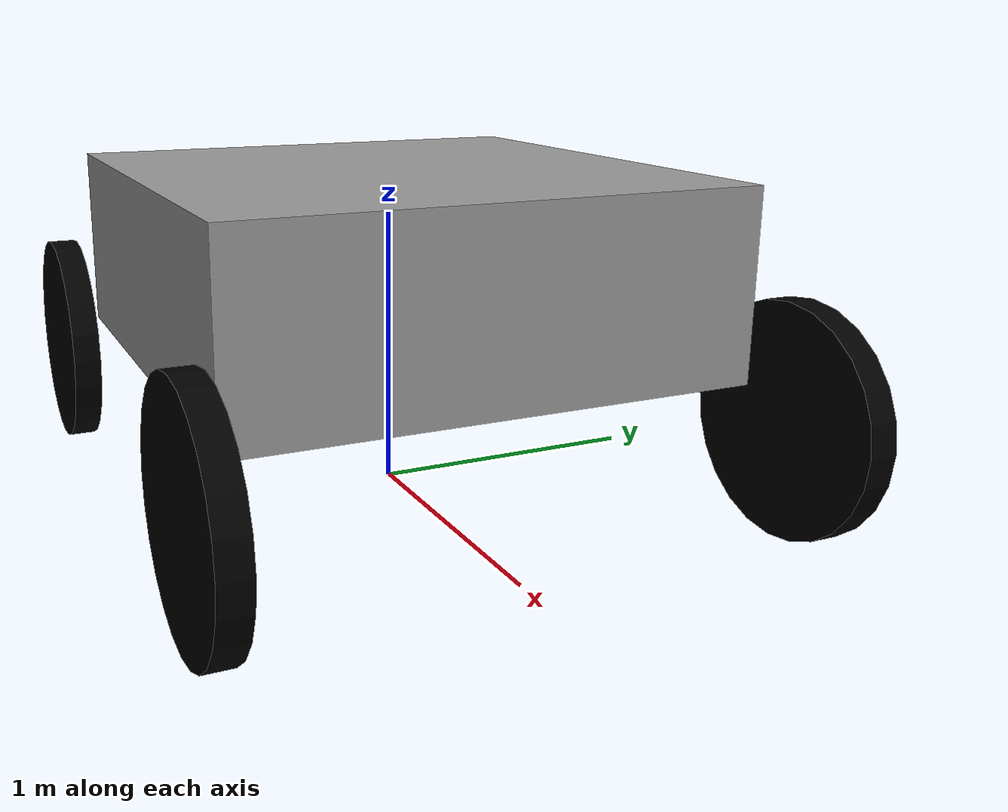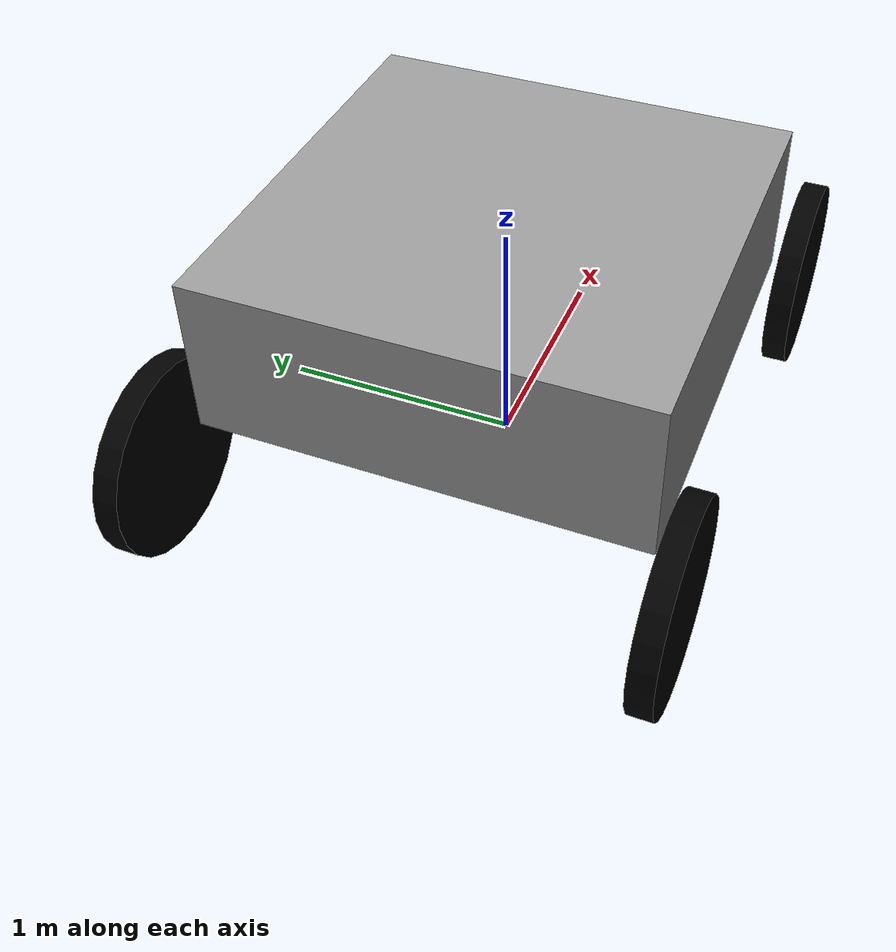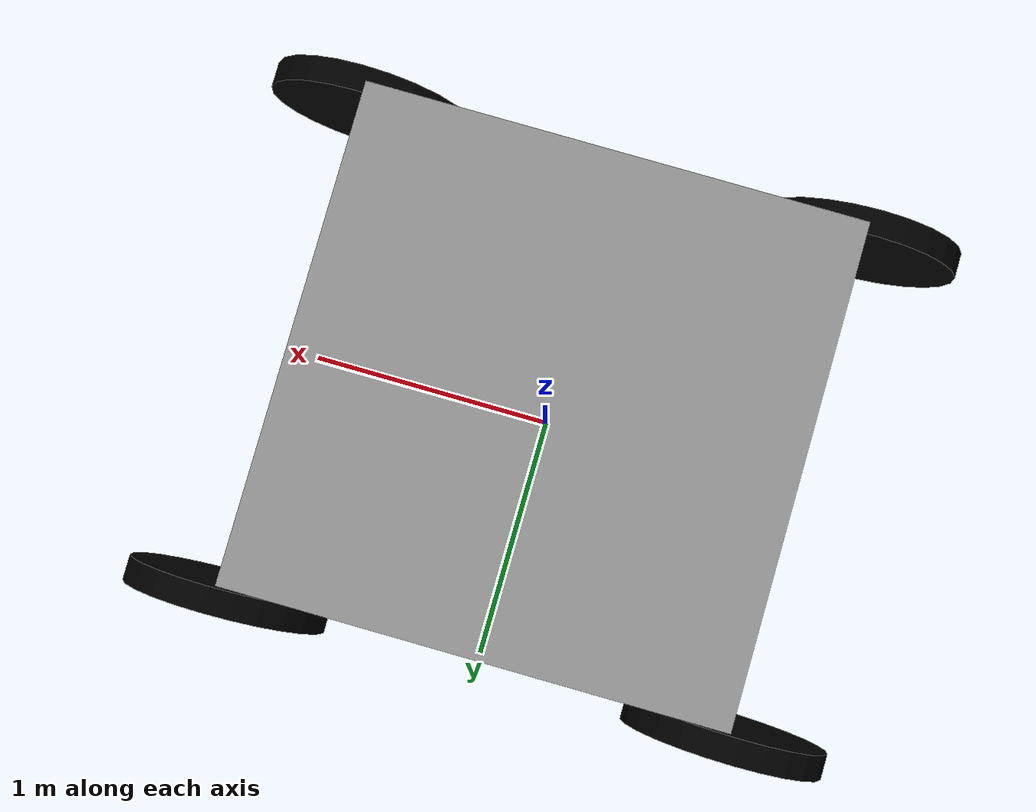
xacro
<?xml version="1.0"?>

<robot name="four_wheel_steering_robot" xmlns:xacro="http://www.ros.org/wiki/xacro">

  <xacro:include filename="$(find four_wheel_steering_controller)/test/urdf/chassis.xacro" />
  <xacro:include filename="$(find four_wheel_steering_controller)/test/urdf/wheel_steered.xacro" />

  <xacro:property name="M_PI" value="3.14159"/>

  <!-- Wheel Mounting Positions -->
  <xacro:property name="ground_clearance" value="0.5" />
  <xacro:property name="wheel_x_offset" value="0.001" />
  <xacro:property name="wheel_y_offset" value="0.001" />

  <xacro:chassis/>

  <!-- Wheel macros -->
  <xacro:wheel_steered wheel_prefix="front_left" parent_link="base_link" wheel_origin_y="${wheel_y_offset}" left_right="-1">
    <origin xyz="${wheelbase/2+wheel_x_offset} ${track/2-wheel_y_offset} ${-base_z_size/2 + wheel_radius - ground_clearance}" rpy="0 0 0" />
  </xacro:wheel_steered>
  <xacro:wheel_steered wheel_prefix="front_right" parent_link="base_link" wheel_origin_y="${-wheel_y_offset}" left_right="1">
    <origin xyz="${wheelbase/2+wheel_x_offset} ${-track/2+wheel_y_offset} ${-base_z_size/2 + wheel_radius - ground_clearance}" rpy="0 0 0" />
  </xacro:wheel_steered>
  <xacro:wheel_steered wheel_prefix="rear_left" parent_link="base_link" wheel_origin_y="${wheel_y_offset}" left_right="-1">
    <origin xyz="${-wheelbase/2+wheel_x_offset} ${track/2-wheel_y_offset} ${-base_z_size/2 + wheel_radius - ground_clearance}" rpy="0 0 0" />
  </xacro:wheel_steered>
  <xacro:wheel_steered wheel_prefix="rear_right" parent_link="base_link" wheel_origin_y="${-wheel_y_offset}" left_right="1">
    <origin xyz="${-wheelbase/2+wheel_x_offset} ${-track/2+wheel_y_offset} ${-base_z_size/2 + wheel_radius - ground_clearance}" rpy="0 0 0" />
  </xacro:wheel_steered>

  <!-- Gazebo plugin for ROS Control -->
  <gazebo>
    <plugin name="gazebo_ros_control" filename="libgazebo_ros_control.so">
    <legacyModeNS>true</legacyModeNS>
    <robotNamespace>/</robotNamespace>
    <robotSimType>gazebo_ros_control/DefaultRobotHWSim</robotSimType>
  </plugin>
  </gazebo>

</robot>

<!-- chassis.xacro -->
<robot xmlns:xacro="http://www.ros.org/wiki/xacro" name="chassis">
  <!-- Base Properties -->
  <xacro:property name="mass_base" value="340" />
  <xacro:property name="base_x_size" value="1.8000" />
  <xacro:property name="base_y_size" value="1.80000" />
  <xacro:property name="base_z_size" value="0.66000" />

  <xacro:property name="wheelbase" value="2" />
  <xacro:property name="track" value="2" />

  <xacro:macro name="chassis">
    <!-- Base footprint is on the ground under the robot -->
    <gazebo reference="base_footprint">
      <material>Gazebo/Grey</material>
    </gazebo>
    <link name="base_footprint">
    <inertial>
      <origin xyz="0 0 1" rpy="0 0 0"/>
      <mass value="1"/>
      <inertia
        ixx="100.0" ixy="10.0" ixz="10.0"
        iyy="100.0" iyz="10.0"
        izz="100.0"/>
    </inertial>
    </link>

    <gazebo reference="base_link">
      <material>Gazebo/Grey</material>
    </gazebo>
    <!-- Base link is the center of the robot's bottom plate -->
    <link name="base_link">
      <inertial>
        <mass value="340" />
        <origin xyz="0 0 0" />
        <inertia ixx="${mass_base/12.0 * (base_y_size*base_y_size + base_z_size*base_z_size)}" ixy="1" ixz="1"
                 iyy="${mass_base/12.0 * (base_x_size*base_x_size + base_z_size*base_z_size)}" iyz="1"
                 izz="${mass_base/12.0 * (base_y_size*base_y_size + base_x_size*base_x_size)}" />
      </inertial>
      <visual>
        <origin xyz="0 0 0" rpy="0 0 0" />
        <geometry>
          <box size="${base_x_size} ${base_y_size} ${base_z_size}"/>
        </geometry>
        <material name="grey">
          <color rgba="0.6 0.6 0.6 1"/>
        </material>
      </visual>
      <collision>
        <geometry>
          <box size="${base_x_size} ${base_y_size} ${base_z_size}"/>
        </geometry>
      </collision>
    </link>
    <joint name="base_footprint_joint" type="fixed">
      <origin xyz="0 0 ${ground_clearance + base_z_size/2}" rpy="0 0 0" />
      <child link="base_link" />
      <parent link="base_footprint" />
    </joint>
  </xacro:macro>
</robot>

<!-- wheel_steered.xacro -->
<robot xmlns:xacro="http://www.ros.org/wiki/xacro" name="wheel_steered">

  <xacro:property name="steering_link_y" value="0.05" />
  <xacro:property name="steering_link_xz" value="0.1" />
  <xacro:property name="steering_link_mass" value="500.0" />

  <xacro:include filename="$(find four_wheel_steering_controller)/test/urdf/wheel.xacro" />

  <xacro:macro name="wheel_steered" params="wheel_prefix parent_link wheel_origin_y left_right *joint_origin ">
    <link name="${wheel_prefix}_steering">
      <visual>
        <origin xyz="0 ${-wheel_origin_y} 0" rpy="0 0 0"/>
        <geometry>
          <box size="0.05 ${steering_link_y} 0.05"/>
        </geometry>
        <material name="blue">
          <color rgba="0.2 0.2 0.6 1"/>
        </material>
      </visual>
      <inertial>
        <mass value="${steering_link_mass}" />
        <origin xyz="0 ${-wheel_origin_y} 0" />
        <inertia  ixx="${steering_link_mass/12.0 * (steering_link_y*steering_link_y + steering_link_xz*steering_link_xz)}" ixy="0" ixz="0"
                  iyy="${steering_link_mass/12.0 * (steering_link_xz*steering_link_xz + steering_link_xz*steering_link_xz)}" iyz="0"
                  izz="${steering_link_mass/12.0 * (steering_link_y*steering_link_y + steering_link_xz*steering_link_xz)}" />
      </inertial>
    </link>

    <joint name="${wheel_prefix}_steering_joint" type="revolute">
      <limit lower="${-M_PI/6}" upper="${M_PI/6}" effort="1000.0" velocity="2.0"/>
      <axis xyz="0 0 1"/>
      <parent link="${parent_link}"/>
      <child link="${wheel_prefix}_steering"/>
      <xacro:insert_block name="joint_origin"/>
      <dynamics damping="0.7"/>
    </joint>

    <transmission name="${wheel_prefix}_steering_trans" type="SimpleTransmission">
      <type>transmission_interface/SimpleTransmission</type>
      <actuator name="${wheel_prefix}_steering_motor">
        <hardwareInterface>hardware_interface/PositionJointInterface</hardwareInterface>
        <mechanicalReduction>1</mechanicalReduction>
      </actuator>
      <joint name="${wheel_prefix}_steering_joint">
        <hardwareInterface>hardware_interface/PositionJointInterface</hardwareInterface>
      </joint>
    </transmission>

    <xacro:wheel wheel_prefix="${wheel_prefix}" parent_link="${wheel_prefix}_steering" left_right="${left_right}">
      <origin xyz="0 ${wheel_origin_y} 0" rpy="0 0 0" />
    </xacro:wheel>
  </xacro:macro>

</robot>

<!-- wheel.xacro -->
<robot xmlns:xacro="http://www.ros.org/wiki/xacro" name="wheel">

  <!-- Wheel Properties -->
  <xacro:property name="wheel_length" value="0.1" />
  <xacro:property name="wheel_radius" value="0.4" />
  <xacro:property name="mass_wheel" value="500.0" />

  <xacro:macro name="wheel" params="wheel_prefix parent_link left_right *joint_origin">
    <gazebo reference="${wheel_prefix}_wheel_link">
      <material>Gazebo/Black</material>
    </gazebo>
		<link name="${wheel_prefix}_wheel_link">
			<inertial>
        <mass value="${mass_wheel}" />
        <origin xyz="0 0 0" rpy="${M_PI/2}  0 0" />
        <inertia  ixx="${mass_wheel/4.0*(wheel_radius*wheel_radius+wheel_length*wheel_length/3.0)}" ixy="0" ixz="0"
                  iyy="${mass_wheel*wheel_radius*wheel_radius/2.0}" iyz="0"
                  izz="${mass_wheel/4.0*(wheel_radius*wheel_radius+wheel_length*wheel_length/3.0)}" />
      </inertial>
			<visual>
        <origin xyz="0 0 0" rpy="${left_right * M_PI/2}  0 0" />
				<geometry>
          <cylinder length="${wheel_length}" radius="${wheel_radius}"/>
				</geometry>
        <material name="black">
          <color rgba="0 0 0 1"/>
        </material>
			</visual>
			<collision>
				<origin xyz="0 0 0" rpy="${M_PI/2} 0 0" />
				<geometry>
					<cylinder length="${wheel_length}" radius="${wheel_radius}" />
				</geometry>
			</collision>
		</link>

		<gazebo reference="${wheel_prefix}_wheel_link">
			<mu1 value="1.0"/>
			<mu2 value="1.0"/>
			<kp value="10000000.0" />
			<kd value="1.0" />
			<fdir1 value="1 0 0"/>
		</gazebo>

		<joint name="${wheel_prefix}_wheel" type="continuous">
      <parent link="${parent_link}"/>
			<child link="${wheel_prefix}_wheel_link"/>
      <xacro:insert_block name="joint_origin"/>
			<axis xyz="0 1 0" rpy="0 0 0" />
		</joint>

		<transmission name="${wheel_prefix}_wheel_trans" type="SimpleTransmission">
			<type>transmission_interface/SimpleTransmission</type>
			<actuator name="${wheel_prefix}_wheel_motor">
				<mechanicalReduction>1</mechanicalReduction>
			</actuator>
			<joint name="${wheel_prefix}_wheel">
				<hardwareInterface>hardware_interface/VelocityJointInterface</hardwareInterface>
			</joint>
		</transmission>

	</xacro:macro>
</robot>
